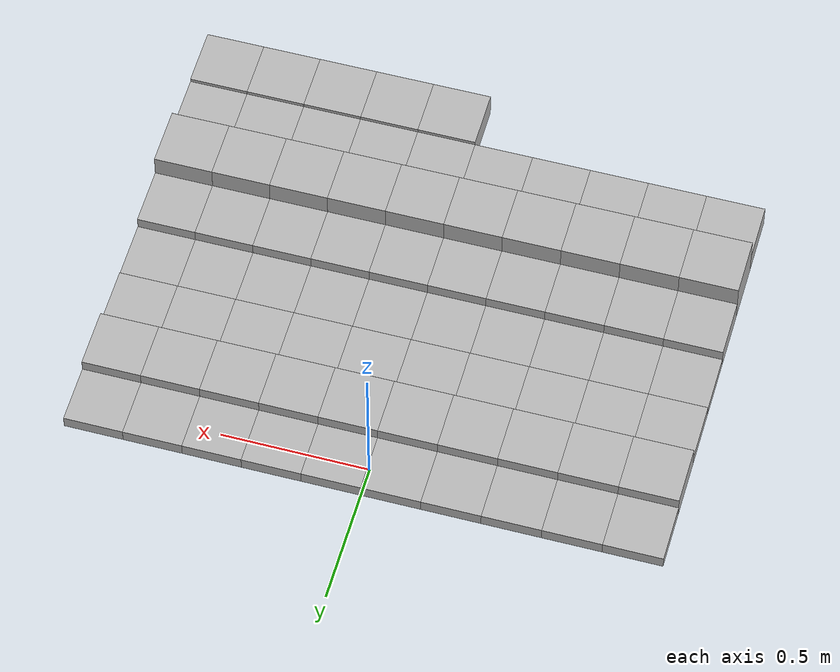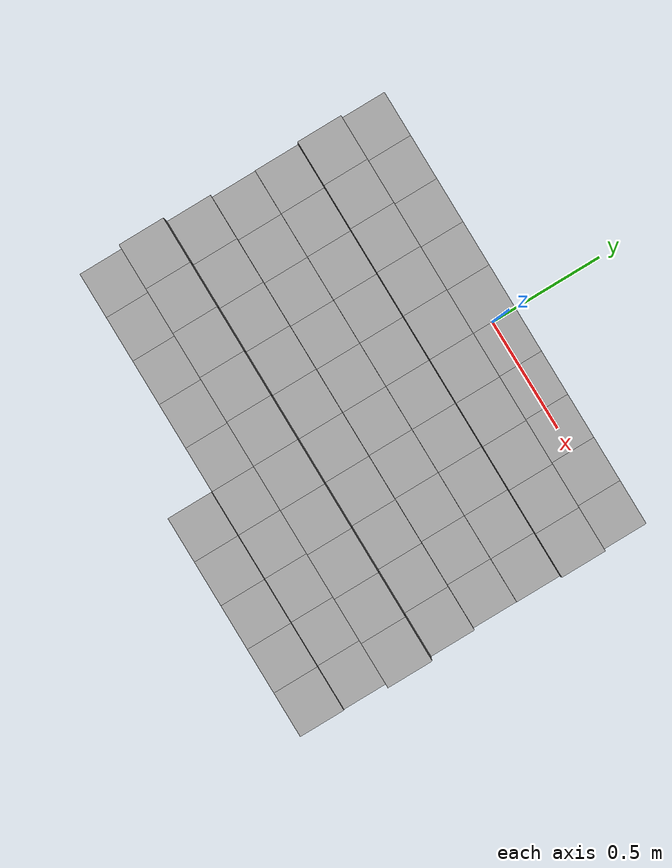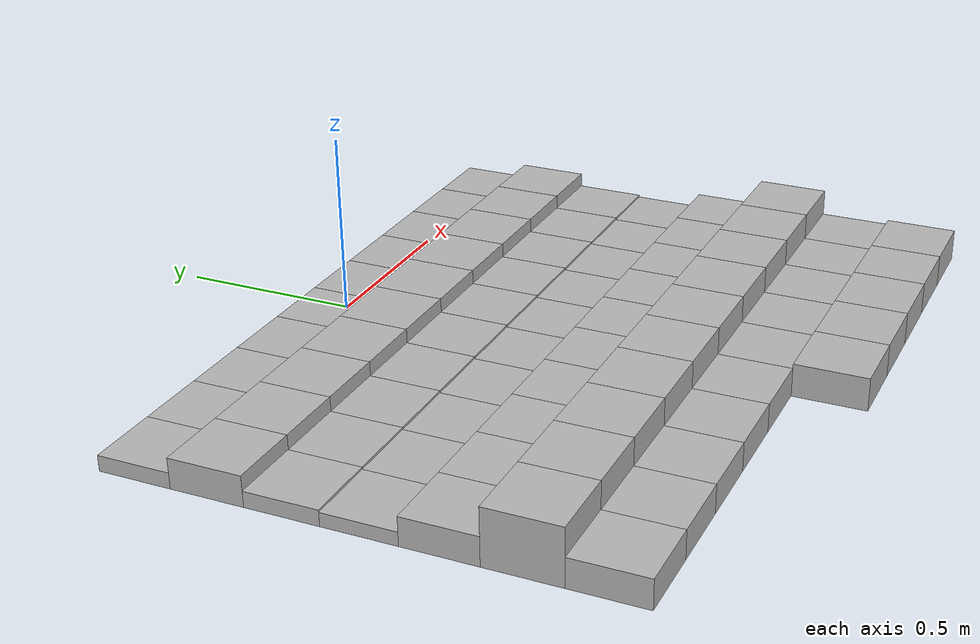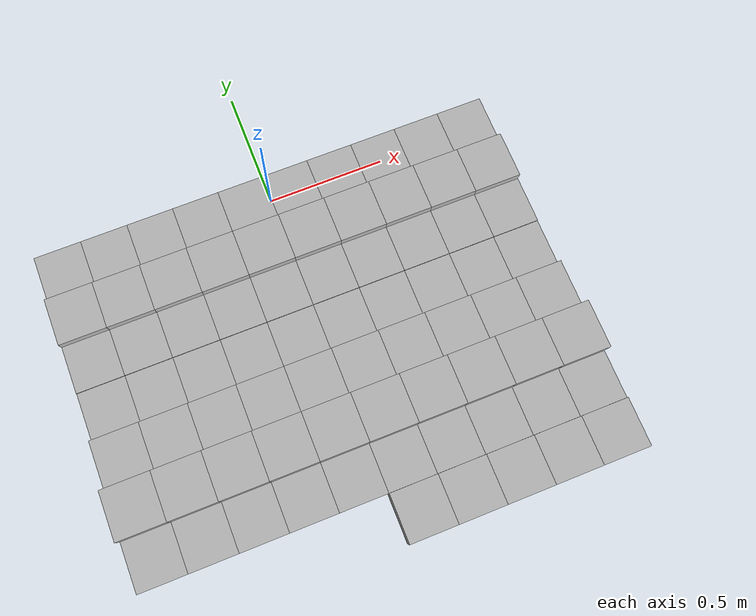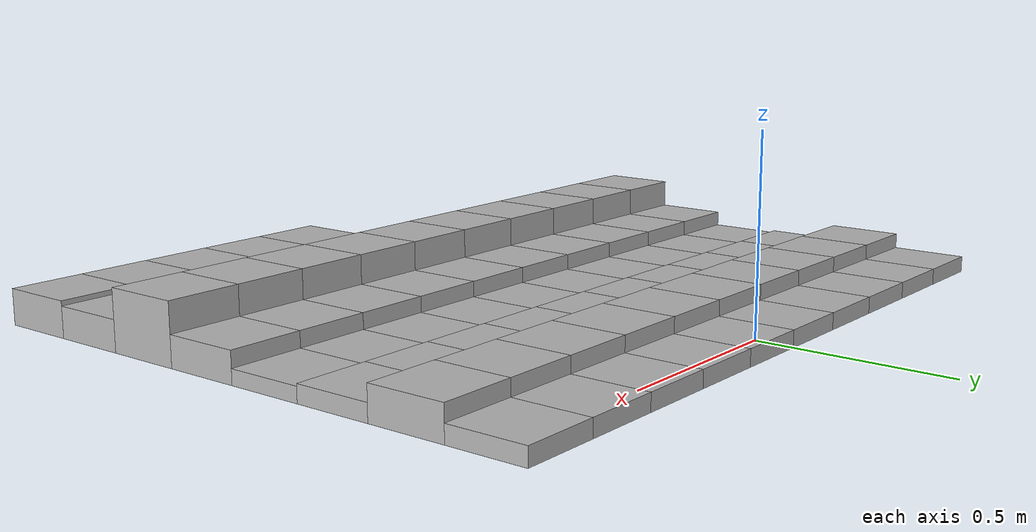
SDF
<sdf version="1.6">
 <model name="Terrain">
  <static>true</static>
  <link name="box_0_0">
   <pose>-0.9 0.0 0.0217370366898 0 0 0</pose>
   <inertial>
    <mass>1.0</mass>
    <inertia><ixx>0.0</ixx><ixy>0.0</ixy><ixz>0.0</ixz><iyy>0.0</iyy><iyz>0.0</iyz><izz>0.0</izz></inertia>
   </inertial>
   <collision name="collision"><geometry><box><size>0.2 0.2 0.0434740733797</size></box></geometry></collision>
   <visual name="visual"><geometry><box><size>0.2 0.2 0.0434740733797</size></box></geometry></visual>
  </link>
  <link name="box_0_1">
   <pose>-0.7 0.0 0.0217370366898 0 0 0</pose>
   <inertial>
    <mass>1.0</mass>
    <inertia><ixx>0.0</ixx><ixy>0.0</ixy><ixz>0.0</ixz><iyy>0.0</iyy><iyz>0.0</iyz><izz>0.0</izz></inertia>
   </inertial>
   <collision name="collision"><geometry><box><size>0.2 0.2 0.0434740733797</size></box></geometry></collision>
   <visual name="visual"><geometry><box><size>0.2 0.2 0.0434740733797</size></box></geometry></visual>
  </link>
  <link name="box_0_2">
   <pose>-0.5 0.0 0.0217370366898 0 0 0</pose>
   <inertial>
    <mass>1.0</mass>
    <inertia><ixx>0.0</ixx><ixy>0.0</ixy><ixz>0.0</ixz><iyy>0.0</iyy><iyz>0.0</iyz><izz>0.0</izz></inertia>
   </inertial>
   <collision name="collision"><geometry><box><size>0.2 0.2 0.0434740733797</size></box></geometry></collision>
   <visual name="visual"><geometry><box><size>0.2 0.2 0.0434740733797</size></box></geometry></visual>
  </link>
  <link name="box_0_3">
   <pose>-0.3 0.0 0.0217370366898 0 0 0</pose>
   <inertial>
    <mass>1.0</mass>
    <inertia><ixx>0.0</ixx><ixy>0.0</ixy><ixz>0.0</ixz><iyy>0.0</iyy><iyz>0.0</iyz><izz>0.0</izz></inertia>
   </inertial>
   <collision name="collision"><geometry><box><size>0.2 0.2 0.0434740733797</size></box></geometry></collision>
   <visual name="visual"><geometry><box><size>0.2 0.2 0.0434740733797</size></box></geometry></visual>
  </link>
  <link name="box_0_4">
   <pose>-0.1 0.0 0.0217370366898 0 0 0</pose>
   <inertial>
    <mass>1.0</mass>
    <inertia><ixx>0.0</ixx><ixy>0.0</ixy><ixz>0.0</ixz><iyy>0.0</iyy><iyz>0.0</iyz><izz>0.0</izz></inertia>
   </inertial>
   <collision name="collision"><geometry><box><size>0.2 0.2 0.0434740733797</size></box></geometry></collision>
   <visual name="visual"><geometry><box><size>0.2 0.2 0.0434740733797</size></box></geometry></visual>
  </link>
  <link name="box_0_5">
   <pose>0.1 0.0 0.0217370366898 0 0 0</pose>
   <inertial>
    <mass>1.0</mass>
    <inertia><ixx>0.0</ixx><ixy>0.0</ixy><ixz>0.0</ixz><iyy>0.0</iyy><iyz>0.0</iyz><izz>0.0</izz></inertia>
   </inertial>
   <collision name="collision"><geometry><box><size>0.2 0.2 0.0434740733797</size></box></geometry></collision>
   <visual name="visual"><geometry><box><size>0.2 0.2 0.0434740733797</size></box></geometry></visual>
  </link>
  <link name="box_0_6">
   <pose>0.3 0.0 0.0217370366898 0 0 0</pose>
   <inertial>
    <mass>1.0</mass>
    <inertia><ixx>0.0</ixx><ixy>0.0</ixy><ixz>0.0</ixz><iyy>0.0</iyy><iyz>0.0</iyz><izz>0.0</izz></inertia>
   </inertial>
   <collision name="collision"><geometry><box><size>0.2 0.2 0.0434740733797</size></box></geometry></collision>
   <visual name="visual"><geometry><box><size>0.2 0.2 0.0434740733797</size></box></geometry></visual>
  </link>
  <link name="box_0_7">
   <pose>0.5 0.0 0.0217370366898 0 0 0</pose>
   <inertial>
    <mass>1.0</mass>
    <inertia><ixx>0.0</ixx><ixy>0.0</ixy><ixz>0.0</ixz><iyy>0.0</iyy><iyz>0.0</iyz><izz>0.0</izz></inertia>
   </inertial>
   <collision name="collision"><geometry><box><size>0.2 0.2 0.0434740733797</size></box></geometry></collision>
   <visual name="visual"><geometry><box><size>0.2 0.2 0.0434740733797</size></box></geometry></visual>
  </link>
  <link name="box_0_8">
   <pose>0.7 0.0 0.0217370366898 0 0 0</pose>
   <inertial>
    <mass>1.0</mass>
    <inertia><ixx>0.0</ixx><ixy>0.0</ixy><ixz>0.0</ixz><iyy>0.0</iyy><iyz>0.0</iyz><izz>0.0</izz></inertia>
   </inertial>
   <collision name="collision"><geometry><box><size>0.2 0.2 0.0434740733797</size></box></geometry></collision>
   <visual name="visual"><geometry><box><size>0.2 0.2 0.0434740733797</size></box></geometry></visual>
  </link>
  <link name="box_0_9">
   <pose>0.9 0.0 0.0217370366898 0 0 0</pose>
   <inertial>
    <mass>1.0</mass>
    <inertia><ixx>0.0</ixx><ixy>0.0</ixy><ixz>0.0</ixz><iyy>0.0</iyy><iyz>0.0</iyz><izz>0.0</izz></inertia>
   </inertial>
   <collision name="collision"><geometry><box><size>0.2 0.2 0.0434740733797</size></box></geometry></collision>
   <visual name="visual"><geometry><box><size>0.2 0.2 0.0434740733797</size></box></geometry></visual>
  </link>
  <link name="box_1_0">
   <pose>-0.9 -0.2 0.0420882695264 0 0 0</pose>
   <inertial>
    <mass>1.0</mass>
    <inertia><ixx>0.0</ixx><ixy>0.0</ixy><ixz>0.0</ixz><iyy>0.0</iyy><iyz>0.0</iyz><izz>0.0</izz></inertia>
   </inertial>
   <collision name="collision"><geometry><box><size>0.2 0.2 0.0841765390528</size></box></geometry></collision>
   <visual name="visual"><geometry><box><size>0.2 0.2 0.0841765390528</size></box></geometry></visual>
  </link>
  <link name="box_1_1">
   <pose>-0.7 -0.2 0.0420882695264 0 0 0</pose>
   <inertial>
    <mass>1.0</mass>
    <inertia><ixx>0.0</ixx><ixy>0.0</ixy><ixz>0.0</ixz><iyy>0.0</iyy><iyz>0.0</iyz><izz>0.0</izz></inertia>
   </inertial>
   <collision name="collision"><geometry><box><size>0.2 0.2 0.0841765390528</size></box></geometry></collision>
   <visual name="visual"><geometry><box><size>0.2 0.2 0.0841765390528</size></box></geometry></visual>
  </link>
  <link name="box_1_2">
   <pose>-0.5 -0.2 0.0420882695264 0 0 0</pose>
   <inertial>
    <mass>1.0</mass>
    <inertia><ixx>0.0</ixx><ixy>0.0</ixy><ixz>0.0</ixz><iyy>0.0</iyy><iyz>0.0</iyz><izz>0.0</izz></inertia>
   </inertial>
   <collision name="collision"><geometry><box><size>0.2 0.2 0.0841765390528</size></box></geometry></collision>
   <visual name="visual"><geometry><box><size>0.2 0.2 0.0841765390528</size></box></geometry></visual>
  </link>
  <link name="box_1_3">
   <pose>-0.3 -0.2 0.0420882695264 0 0 0</pose>
   <inertial>
    <mass>1.0</mass>
    <inertia><ixx>0.0</ixx><ixy>0.0</ixy><ixz>0.0</ixz><iyy>0.0</iyy><iyz>0.0</iyz><izz>0.0</izz></inertia>
   </inertial>
   <collision name="collision"><geometry><box><size>0.2 0.2 0.0841765390528</size></box></geometry></collision>
   <visual name="visual"><geometry><box><size>0.2 0.2 0.0841765390528</size></box></geometry></visual>
  </link>
  <link name="box_1_4">
   <pose>-0.1 -0.2 0.0420882695264 0 0 0</pose>
   <inertial>
    <mass>1.0</mass>
    <inertia><ixx>0.0</ixx><ixy>0.0</ixy><ixz>0.0</ixz><iyy>0.0</iyy><iyz>0.0</iyz><izz>0.0</izz></inertia>
   </inertial>
   <collision name="collision"><geometry><box><size>0.2 0.2 0.0841765390528</size></box></geometry></collision>
   <visual name="visual"><geometry><box><size>0.2 0.2 0.0841765390528</size></box></geometry></visual>
  </link>
  <link name="box_1_5">
   <pose>0.1 -0.2 0.0420882695264 0 0 0</pose>
   <inertial>
    <mass>1.0</mass>
    <inertia><ixx>0.0</ixx><ixy>0.0</ixy><ixz>0.0</ixz><iyy>0.0</iyy><iyz>0.0</iyz><izz>0.0</izz></inertia>
   </inertial>
   <collision name="collision"><geometry><box><size>0.2 0.2 0.0841765390528</size></box></geometry></collision>
   <visual name="visual"><geometry><box><size>0.2 0.2 0.0841765390528</size></box></geometry></visual>
  </link>
  <link name="box_1_6">
   <pose>0.3 -0.2 0.0420882695264 0 0 0</pose>
   <inertial>
    <mass>1.0</mass>
    <inertia><ixx>0.0</ixx><ixy>0.0</ixy><ixz>0.0</ixz><iyy>0.0</iyy><iyz>0.0</iyz><izz>0.0</izz></inertia>
   </inertial>
   <collision name="collision"><geometry><box><size>0.2 0.2 0.0841765390528</size></box></geometry></collision>
   <visual name="visual"><geometry><box><size>0.2 0.2 0.0841765390528</size></box></geometry></visual>
  </link>
  <link name="box_1_7">
   <pose>0.5 -0.2 0.0420882695264 0 0 0</pose>
   <inertial>
    <mass>1.0</mass>
    <inertia><ixx>0.0</ixx><ixy>0.0</ixy><ixz>0.0</ixz><iyy>0.0</iyy><iyz>0.0</iyz><izz>0.0</izz></inertia>
   </inertial>
   <collision name="collision"><geometry><box><size>0.2 0.2 0.0841765390528</size></box></geometry></collision>
   <visual name="visual"><geometry><box><size>0.2 0.2 0.0841765390528</size></box></geometry></visual>
  </link>
  <link name="box_1_8">
   <pose>0.7 -0.2 0.0420882695264 0 0 0</pose>
   <inertial>
    <mass>1.0</mass>
    <inertia><ixx>0.0</ixx><ixy>0.0</ixy><ixz>0.0</ixz><iyy>0.0</iyy><iyz>0.0</iyz><izz>0.0</izz></inertia>
   </inertial>
   <collision name="collision"><geometry><box><size>0.2 0.2 0.0841765390528</size></box></geometry></collision>
   <visual name="visual"><geometry><box><size>0.2 0.2 0.0841765390528</size></box></geometry></visual>
  </link>
  <link name="box_1_9">
   <pose>0.9 -0.2 0.0420882695264 0 0 0</pose>
   <inertial>
    <mass>1.0</mass>
    <inertia><ixx>0.0</ixx><ixy>0.0</ixy><ixz>0.0</ixz><iyy>0.0</iyy><iyz>0.0</iyz><izz>0.0</izz></inertia>
   </inertial>
   <collision name="collision"><geometry><box><size>0.2 0.2 0.0841765390528</size></box></geometry></collision>
   <visual name="visual"><geometry><box><size>0.2 0.2 0.0841765390528</size></box></geometry></visual>
  </link>
  <link name="box_2_0">
   <pose>-0.9 -0.4 0.0218855744649 0 0 0</pose>
   <inertial>
    <mass>1.0</mass>
    <inertia><ixx>0.0</ixx><ixy>0.0</ixy><ixz>0.0</ixz><iyy>0.0</iyy><iyz>0.0</iyz><izz>0.0</izz></inertia>
   </inertial>
   <collision name="collision"><geometry><box><size>0.2 0.2 0.0437711489298</size></box></geometry></collision>
   <visual name="visual"><geometry><box><size>0.2 0.2 0.0437711489298</size></box></geometry></visual>
  </link>
  <link name="box_2_1">
   <pose>-0.7 -0.4 0.0218855744649 0 0 0</pose>
   <inertial>
    <mass>1.0</mass>
    <inertia><ixx>0.0</ixx><ixy>0.0</ixy><ixz>0.0</ixz><iyy>0.0</iyy><iyz>0.0</iyz><izz>0.0</izz></inertia>
   </inertial>
   <collision name="collision"><geometry><box><size>0.2 0.2 0.0437711489298</size></box></geometry></collision>
   <visual name="visual"><geometry><box><size>0.2 0.2 0.0437711489298</size></box></geometry></visual>
  </link>
  <link name="box_2_2">
   <pose>-0.5 -0.4 0.0218855744649 0 0 0</pose>
   <inertial>
    <mass>1.0</mass>
    <inertia><ixx>0.0</ixx><ixy>0.0</ixy><ixz>0.0</ixz><iyy>0.0</iyy><iyz>0.0</iyz><izz>0.0</izz></inertia>
   </inertial>
   <collision name="collision"><geometry><box><size>0.2 0.2 0.0437711489298</size></box></geometry></collision>
   <visual name="visual"><geometry><box><size>0.2 0.2 0.0437711489298</size></box></geometry></visual>
  </link>
  <link name="box_2_3">
   <pose>-0.3 -0.4 0.0218855744649 0 0 0</pose>
   <inertial>
    <mass>1.0</mass>
    <inertia><ixx>0.0</ixx><ixy>0.0</ixy><ixz>0.0</ixz><iyy>0.0</iyy><iyz>0.0</iyz><izz>0.0</izz></inertia>
   </inertial>
   <collision name="collision"><geometry><box><size>0.2 0.2 0.0437711489298</size></box></geometry></collision>
   <visual name="visual"><geometry><box><size>0.2 0.2 0.0437711489298</size></box></geometry></visual>
  </link>
  <link name="box_2_4">
   <pose>-0.1 -0.4 0.0218855744649 0 0 0</pose>
   <inertial>
    <mass>1.0</mass>
    <inertia><ixx>0.0</ixx><ixy>0.0</ixy><ixz>0.0</ixz><iyy>0.0</iyy><iyz>0.0</iyz><izz>0.0</izz></inertia>
   </inertial>
   <collision name="collision"><geometry><box><size>0.2 0.2 0.0437711489298</size></box></geometry></collision>
   <visual name="visual"><geometry><box><size>0.2 0.2 0.0437711489298</size></box></geometry></visual>
  </link>
  <link name="box_2_5">
   <pose>0.1 -0.4 0.0218855744649 0 0 0</pose>
   <inertial>
    <mass>1.0</mass>
    <inertia><ixx>0.0</ixx><ixy>0.0</ixy><ixz>0.0</ixz><iyy>0.0</iyy><iyz>0.0</iyz><izz>0.0</izz></inertia>
   </inertial>
   <collision name="collision"><geometry><box><size>0.2 0.2 0.0437711489298</size></box></geometry></collision>
   <visual name="visual"><geometry><box><size>0.2 0.2 0.0437711489298</size></box></geometry></visual>
  </link>
  <link name="box_2_6">
   <pose>0.3 -0.4 0.0218855744649 0 0 0</pose>
   <inertial>
    <mass>1.0</mass>
    <inertia><ixx>0.0</ixx><ixy>0.0</ixy><ixz>0.0</ixz><iyy>0.0</iyy><iyz>0.0</iyz><izz>0.0</izz></inertia>
   </inertial>
   <collision name="collision"><geometry><box><size>0.2 0.2 0.0437711489298</size></box></geometry></collision>
   <visual name="visual"><geometry><box><size>0.2 0.2 0.0437711489298</size></box></geometry></visual>
  </link>
  <link name="box_2_7">
   <pose>0.5 -0.4 0.0218855744649 0 0 0</pose>
   <inertial>
    <mass>1.0</mass>
    <inertia><ixx>0.0</ixx><ixy>0.0</ixy><ixz>0.0</ixz><iyy>0.0</iyy><iyz>0.0</iyz><izz>0.0</izz></inertia>
   </inertial>
   <collision name="collision"><geometry><box><size>0.2 0.2 0.0437711489298</size></box></geometry></collision>
   <visual name="visual"><geometry><box><size>0.2 0.2 0.0437711489298</size></box></geometry></visual>
  </link>
  <link name="box_2_8">
   <pose>0.7 -0.4 0.0218855744649 0 0 0</pose>
   <inertial>
    <mass>1.0</mass>
    <inertia><ixx>0.0</ixx><ixy>0.0</ixy><ixz>0.0</ixz><iyy>0.0</iyy><iyz>0.0</iyz><izz>0.0</izz></inertia>
   </inertial>
   <collision name="collision"><geometry><box><size>0.2 0.2 0.0437711489298</size></box></geometry></collision>
   <visual name="visual"><geometry><box><size>0.2 0.2 0.0437711489298</size></box></geometry></visual>
  </link>
  <link name="box_2_9">
   <pose>0.9 -0.4 0.0218855744649 0 0 0</pose>
   <inertial>
    <mass>1.0</mass>
    <inertia><ixx>0.0</ixx><ixy>0.0</ixy><ixz>0.0</ixz><iyy>0.0</iyy><iyz>0.0</iyz><izz>0.0</izz></inertia>
   </inertial>
   <collision name="collision"><geometry><box><size>0.2 0.2 0.0437711489298</size></box></geometry></collision>
   <visual name="visual"><geometry><box><size>0.2 0.2 0.0437711489298</size></box></geometry></visual>
  </link>
  <link name="box_3_0">
   <pose>-0.9 -0.6 0.0189409677054 0 0 0</pose>
   <inertial>
    <mass>1.0</mass>
    <inertia><ixx>0.0</ixx><ixy>0.0</ixy><ixz>0.0</ixz><iyy>0.0</iyy><iyz>0.0</iyz><izz>0.0</izz></inertia>
   </inertial>
   <collision name="collision"><geometry><box><size>0.2 0.2 0.0378819354108</size></box></geometry></collision>
   <visual name="visual"><geometry><box><size>0.2 0.2 0.0378819354108</size></box></geometry></visual>
  </link>
  <link name="box_3_1">
   <pose>-0.7 -0.6 0.0189409677054 0 0 0</pose>
   <inertial>
    <mass>1.0</mass>
    <inertia><ixx>0.0</ixx><ixy>0.0</ixy><ixz>0.0</ixz><iyy>0.0</iyy><iyz>0.0</iyz><izz>0.0</izz></inertia>
   </inertial>
   <collision name="collision"><geometry><box><size>0.2 0.2 0.0378819354108</size></box></geometry></collision>
   <visual name="visual"><geometry><box><size>0.2 0.2 0.0378819354108</size></box></geometry></visual>
  </link>
  <link name="box_3_2">
   <pose>-0.5 -0.6 0.0189409677054 0 0 0</pose>
   <inertial>
    <mass>1.0</mass>
    <inertia><ixx>0.0</ixx><ixy>0.0</ixy><ixz>0.0</ixz><iyy>0.0</iyy><iyz>0.0</iyz><izz>0.0</izz></inertia>
   </inertial>
   <collision name="collision"><geometry><box><size>0.2 0.2 0.0378819354108</size></box></geometry></collision>
   <visual name="visual"><geometry><box><size>0.2 0.2 0.0378819354108</size></box></geometry></visual>
  </link>
  <link name="box_3_3">
   <pose>-0.3 -0.6 0.0189409677054 0 0 0</pose>
   <inertial>
    <mass>1.0</mass>
    <inertia><ixx>0.0</ixx><ixy>0.0</ixy><ixz>0.0</ixz><iyy>0.0</iyy><iyz>0.0</iyz><izz>0.0</izz></inertia>
   </inertial>
   <collision name="collision"><geometry><box><size>0.2 0.2 0.0378819354108</size></box></geometry></collision>
   <visual name="visual"><geometry><box><size>0.2 0.2 0.0378819354108</size></box></geometry></visual>
  </link>
  <link name="box_3_4">
   <pose>-0.1 -0.6 0.0189409677054 0 0 0</pose>
   <inertial>
    <mass>1.0</mass>
    <inertia><ixx>0.0</ixx><ixy>0.0</ixy><ixz>0.0</ixz><iyy>0.0</iyy><iyz>0.0</iyz><izz>0.0</izz></inertia>
   </inertial>
   <collision name="collision"><geometry><box><size>0.2 0.2 0.0378819354108</size></box></geometry></collision>
   <visual name="visual"><geometry><box><size>0.2 0.2 0.0378819354108</size></box></geometry></visual>
  </link>
  <link name="box_3_5">
   <pose>0.1 -0.6 0.0189409677054 0 0 0</pose>
   <inertial>
    <mass>1.0</mass>
    <inertia><ixx>0.0</ixx><ixy>0.0</ixy><ixz>0.0</ixz><iyy>0.0</iyy><iyz>0.0</iyz><izz>0.0</izz></inertia>
   </inertial>
   <collision name="collision"><geometry><box><size>0.2 0.2 0.0378819354108</size></box></geometry></collision>
   <visual name="visual"><geometry><box><size>0.2 0.2 0.0378819354108</size></box></geometry></visual>
  </link>
  <link name="box_3_6">
   <pose>0.3 -0.6 0.0189409677054 0 0 0</pose>
   <inertial>
    <mass>1.0</mass>
    <inertia><ixx>0.0</ixx><ixy>0.0</ixy><ixz>0.0</ixz><iyy>0.0</iyy><iyz>0.0</iyz><izz>0.0</izz></inertia>
   </inertial>
   <collision name="collision"><geometry><box><size>0.2 0.2 0.0378819354108</size></box></geometry></collision>
   <visual name="visual"><geometry><box><size>0.2 0.2 0.0378819354108</size></box></geometry></visual>
  </link>
  <link name="box_3_7">
   <pose>0.5 -0.6 0.0189409677054 0 0 0</pose>
   <inertial>
    <mass>1.0</mass>
    <inertia><ixx>0.0</ixx><ixy>0.0</ixy><ixz>0.0</ixz><iyy>0.0</iyy><iyz>0.0</iyz><izz>0.0</izz></inertia>
   </inertial>
   <collision name="collision"><geometry><box><size>0.2 0.2 0.0378819354108</size></box></geometry></collision>
   <visual name="visual"><geometry><box><size>0.2 0.2 0.0378819354108</size></box></geometry></visual>
  </link>
  <link name="box_3_8">
   <pose>0.7 -0.6 0.0189409677054 0 0 0</pose>
   <inertial>
    <mass>1.0</mass>
    <inertia><ixx>0.0</ixx><ixy>0.0</ixy><ixz>0.0</ixz><iyy>0.0</iyy><iyz>0.0</iyz><izz>0.0</izz></inertia>
   </inertial>
   <collision name="collision"><geometry><box><size>0.2 0.2 0.0378819354108</size></box></geometry></collision>
   <visual name="visual"><geometry><box><size>0.2 0.2 0.0378819354108</size></box></geometry></visual>
  </link>
  <link name="box_3_9">
   <pose>0.9 -0.6 0.0189409677054 0 0 0</pose>
   <inertial>
    <mass>1.0</mass>
    <inertia><ixx>0.0</ixx><ixy>0.0</ixy><ixz>0.0</ixz><iyy>0.0</iyy><iyz>0.0</iyz><izz>0.0</izz></inertia>
   </inertial>
   <collision name="collision"><geometry><box><size>0.2 0.2 0.0378819354108</size></box></geometry></collision>
   <visual name="visual"><geometry><box><size>0.2 0.2 0.0378819354108</size></box></geometry></visual>
  </link>
  <link name="box_4_0">
   <pose>-0.9 -0.8 0.0393046862697 0 0 0</pose>
   <inertial>
    <mass>1.0</mass>
    <inertia><ixx>0.0</ixx><ixy>0.0</ixy><ixz>0.0</ixz><iyy>0.0</iyy><iyz>0.0</iyz><izz>0.0</izz></inertia>
   </inertial>
   <collision name="collision"><geometry><box><size>0.2 0.2 0.0786093725395</size></box></geometry></collision>
   <visual name="visual"><geometry><box><size>0.2 0.2 0.0786093725395</size></box></geometry></visual>
  </link>
  <link name="box_4_1">
   <pose>-0.7 -0.8 0.0393046862697 0 0 0</pose>
   <inertial>
    <mass>1.0</mass>
    <inertia><ixx>0.0</ixx><ixy>0.0</ixy><ixz>0.0</ixz><iyy>0.0</iyy><iyz>0.0</iyz><izz>0.0</izz></inertia>
   </inertial>
   <collision name="collision"><geometry><box><size>0.2 0.2 0.0786093725395</size></box></geometry></collision>
   <visual name="visual"><geometry><box><size>0.2 0.2 0.0786093725395</size></box></geometry></visual>
  </link>
  <link name="box_4_2">
   <pose>-0.5 -0.8 0.0393046862697 0 0 0</pose>
   <inertial>
    <mass>1.0</mass>
    <inertia><ixx>0.0</ixx><ixy>0.0</ixy><ixz>0.0</ixz><iyy>0.0</iyy><iyz>0.0</iyz><izz>0.0</izz></inertia>
   </inertial>
   <collision name="collision"><geometry><box><size>0.2 0.2 0.0786093725395</size></box></geometry></collision>
   <visual name="visual"><geometry><box><size>0.2 0.2 0.0786093725395</size></box></geometry></visual>
  </link>
  <link name="box_4_3">
   <pose>-0.3 -0.8 0.0393046862697 0 0 0</pose>
   <inertial>
    <mass>1.0</mass>
    <inertia><ixx>0.0</ixx><ixy>0.0</ixy><ixz>0.0</ixz><iyy>0.0</iyy><iyz>0.0</iyz><izz>0.0</izz></inertia>
   </inertial>
   <collision name="collision"><geometry><box><size>0.2 0.2 0.0786093725395</size></box></geometry></collision>
   <visual name="visual"><geometry><box><size>0.2 0.2 0.0786093725395</size></box></geometry></visual>
  </link>
  <link name="box_4_4">
   <pose>-0.1 -0.8 0.0393046862697 0 0 0</pose>
   <inertial>
    <mass>1.0</mass>
    <inertia><ixx>0.0</ixx><ixy>0.0</ixy><ixz>0.0</ixz><iyy>0.0</iyy><iyz>0.0</iyz><izz>0.0</izz></inertia>
   </inertial>
   <collision name="collision"><geometry><box><size>0.2 0.2 0.0786093725395</size></box></geometry></collision>
   <visual name="visual"><geometry><box><size>0.2 0.2 0.0786093725395</size></box></geometry></visual>
  </link>
  <link name="box_4_5">
   <pose>0.1 -0.8 0.0393046862697 0 0 0</pose>
   <inertial>
    <mass>1.0</mass>
    <inertia><ixx>0.0</ixx><ixy>0.0</ixy><ixz>0.0</ixz><iyy>0.0</iyy><iyz>0.0</iyz><izz>0.0</izz></inertia>
   </inertial>
   <collision name="collision"><geometry><box><size>0.2 0.2 0.0786093725395</size></box></geometry></collision>
   <visual name="visual"><geometry><box><size>0.2 0.2 0.0786093725395</size></box></geometry></visual>
  </link>
  <link name="box_4_6">
   <pose>0.3 -0.8 0.0393046862697 0 0 0</pose>
   <inertial>
    <mass>1.0</mass>
    <inertia><ixx>0.0</ixx><ixy>0.0</ixy><ixz>0.0</ixz><iyy>0.0</iyy><iyz>0.0</iyz><izz>0.0</izz></inertia>
   </inertial>
   <collision name="collision"><geometry><box><size>0.2 0.2 0.0786093725395</size></box></geometry></collision>
   <visual name="visual"><geometry><box><size>0.2 0.2 0.0786093725395</size></box></geometry></visual>
  </link>
  <link name="box_4_7">
   <pose>0.5 -0.8 0.0393046862697 0 0 0</pose>
   <inertial>
    <mass>1.0</mass>
    <inertia><ixx>0.0</ixx><ixy>0.0</ixy><ixz>0.0</ixz><iyy>0.0</iyy><iyz>0.0</iyz><izz>0.0</izz></inertia>
   </inertial>
   <collision name="collision"><geometry><box><size>0.2 0.2 0.0786093725395</size></box></geometry></collision>
   <visual name="visual"><geometry><box><size>0.2 0.2 0.0786093725395</size></box></geometry></visual>
  </link>
  <link name="box_4_8">
   <pose>0.7 -0.8 0.0393046862697 0 0 0</pose>
   <inertial>
    <mass>1.0</mass>
    <inertia><ixx>0.0</ixx><ixy>0.0</ixy><ixz>0.0</ixz><iyy>0.0</iyy><iyz>0.0</iyz><izz>0.0</izz></inertia>
   </inertial>
   <collision name="collision"><geometry><box><size>0.2 0.2 0.0786093725395</size></box></geometry></collision>
   <visual name="visual"><geometry><box><size>0.2 0.2 0.0786093725395</size></box></geometry></visual>
  </link>
  <link name="box_4_9">
   <pose>0.9 -0.8 0.0393046862697 0 0 0</pose>
   <inertial>
    <mass>1.0</mass>
    <inertia><ixx>0.0</ixx><ixy>0.0</ixy><ixz>0.0</ixz><iyy>0.0</iyy><iyz>0.0</iyz><izz>0.0</izz></inertia>
   </inertial>
   <collision name="collision"><geometry><box><size>0.2 0.2 0.0786093725395</size></box></geometry></collision>
   <visual name="visual"><geometry><box><size>0.2 0.2 0.0786093725395</size></box></geometry></visual>
  </link>
  <link name="box_5_0">
   <pose>-0.9 -1.0 0.0774959682447 0 0 0</pose>
   <inertial>
    <mass>1.0</mass>
    <inertia><ixx>0.0</ixx><ixy>0.0</ixy><ixz>0.0</ixz><iyy>0.0</iyy><iyz>0.0</iyz><izz>0.0</izz></inertia>
   </inertial>
   <collision name="collision"><geometry><box><size>0.2 0.2 0.154991936489</size></box></geometry></collision>
   <visual name="visual"><geometry><box><size>0.2 0.2 0.154991936489</size></box></geometry></visual>
  </link>
  <link name="box_5_1">
   <pose>-0.7 -1.0 0.0774959682447 0 0 0</pose>
   <inertial>
    <mass>1.0</mass>
    <inertia><ixx>0.0</ixx><ixy>0.0</ixy><ixz>0.0</ixz><iyy>0.0</iyy><iyz>0.0</iyz><izz>0.0</izz></inertia>
   </inertial>
   <collision name="collision"><geometry><box><size>0.2 0.2 0.154991936489</size></box></geometry></collision>
   <visual name="visual"><geometry><box><size>0.2 0.2 0.154991936489</size></box></geometry></visual>
  </link>
  <link name="box_5_2">
   <pose>-0.5 -1.0 0.0774959682447 0 0 0</pose>
   <inertial>
    <mass>1.0</mass>
    <inertia><ixx>0.0</ixx><ixy>0.0</ixy><ixz>0.0</ixz><iyy>0.0</iyy><iyz>0.0</iyz><izz>0.0</izz></inertia>
   </inertial>
   <collision name="collision"><geometry><box><size>0.2 0.2 0.154991936489</size></box></geometry></collision>
   <visual name="visual"><geometry><box><size>0.2 0.2 0.154991936489</size></box></geometry></visual>
  </link>
  <link name="box_5_3">
   <pose>-0.3 -1.0 0.0774959682447 0 0 0</pose>
   <inertial>
    <mass>1.0</mass>
    <inertia><ixx>0.0</ixx><ixy>0.0</ixy><ixz>0.0</ixz><iyy>0.0</iyy><iyz>0.0</iyz><izz>0.0</izz></inertia>
   </inertial>
   <collision name="collision"><geometry><box><size>0.2 0.2 0.154991936489</size></box></geometry></collision>
   <visual name="visual"><geometry><box><size>0.2 0.2 0.154991936489</size></box></geometry></visual>
  </link>
  <link name="box_5_4">
   <pose>-0.1 -1.0 0.0774959682447 0 0 0</pose>
   <inertial>
    <mass>1.0</mass>
    <inertia><ixx>0.0</ixx><ixy>0.0</ixy><ixz>0.0</ixz><iyy>0.0</iyy><iyz>0.0</iyz><izz>0.0</izz></inertia>
   </inertial>
   <collision name="collision"><geometry><box><size>0.2 0.2 0.154991936489</size></box></geometry></collision>
   <visual name="visual"><geometry><box><size>0.2 0.2 0.154991936489</size></box></geometry></visual>
  </link>
  <link name="box_5_5">
   <pose>0.1 -1.0 0.0774959682447 0 0 0</pose>
   <inertial>
    <mass>1.0</mass>
    <inertia><ixx>0.0</ixx><ixy>0.0</ixy><ixz>0.0</ixz><iyy>0.0</iyy><iyz>0.0</iyz><izz>0.0</izz></inertia>
   </inertial>
   <collision name="collision"><geometry><box><size>0.2 0.2 0.154991936489</size></box></geometry></collision>
   <visual name="visual"><geometry><box><size>0.2 0.2 0.154991936489</size></box></geometry></visual>
  </link>
  <link name="box_5_6">
   <pose>0.3 -1.0 0.0774959682447 0 0 0</pose>
   <inertial>
    <mass>1.0</mass>
    <inertia><ixx>0.0</ixx><ixy>0.0</ixy><ixz>0.0</ixz><iyy>0.0</iyy><iyz>0.0</iyz><izz>0.0</izz></inertia>
   </inertial>
   <collision name="collision"><geometry><box><size>0.2 0.2 0.154991936489</size></box></geometry></collision>
   <visual name="visual"><geometry><box><size>0.2 0.2 0.154991936489</size></box></geometry></visual>
  </link>
  <link name="box_5_7">
   <pose>0.5 -1.0 0.0774959682447 0 0 0</pose>
   <inertial>
    <mass>1.0</mass>
    <inertia><ixx>0.0</ixx><ixy>0.0</ixy><ixz>0.0</ixz><iyy>0.0</iyy><iyz>0.0</iyz><izz>0.0</izz></inertia>
   </inertial>
   <collision name="collision"><geometry><box><size>0.2 0.2 0.154991936489</size></box></geometry></collision>
   <visual name="visual"><geometry><box><size>0.2 0.2 0.154991936489</size></box></geometry></visual>
  </link>
  <link name="box_5_8">
   <pose>0.7 -1.0 0.0774959682447 0 0 0</pose>
   <inertial>
    <mass>1.0</mass>
    <inertia><ixx>0.0</ixx><ixy>0.0</ixy><ixz>0.0</ixz><iyy>0.0</iyy><iyz>0.0</iyz><izz>0.0</izz></inertia>
   </inertial>
   <collision name="collision"><geometry><box><size>0.2 0.2 0.154991936489</size></box></geometry></collision>
   <visual name="visual"><geometry><box><size>0.2 0.2 0.154991936489</size></box></geometry></visual>
  </link>
  <link name="box_5_9">
   <pose>0.9 -1.0 0.0774959682447 0 0 0</pose>
   <inertial>
    <mass>1.0</mass>
    <inertia><ixx>0.0</ixx><ixy>0.0</ixy><ixz>0.0</ixz><iyy>0.0</iyy><iyz>0.0</iyz><izz>0.0</izz></inertia>
   </inertial>
   <collision name="collision"><geometry><box><size>0.2 0.2 0.154991936489</size></box></geometry></collision>
   <visual name="visual"><geometry><box><size>0.2 0.2 0.154991936489</size></box></geometry></visual>
  </link>
  <link name="box_6_0">
   <pose>-0.9 -1.2 0.0398561098975 0 0 0</pose>
   <inertial>
    <mass>1.0</mass>
    <inertia><ixx>0.0</ixx><ixy>0.0</ixy><ixz>0.0</ixz><iyy>0.0</iyy><iyz>0.0</iyz><izz>0.0</izz></inertia>
   </inertial>
   <collision name="collision"><geometry><box><size>0.2 0.2 0.0797122197951</size></box></geometry></collision>
   <visual name="visual"><geometry><box><size>0.2 0.2 0.0797122197951</size></box></geometry></visual>
  </link>
  <link name="box_6_1">
   <pose>-0.7 -1.2 0.0398561098975 0 0 0</pose>
   <inertial>
    <mass>1.0</mass>
    <inertia><ixx>0.0</ixx><ixy>0.0</ixy><ixz>0.0</ixz><iyy>0.0</iyy><iyz>0.0</iyz><izz>0.0</izz></inertia>
   </inertial>
   <collision name="collision"><geometry><box><size>0.2 0.2 0.0797122197951</size></box></geometry></collision>
   <visual name="visual"><geometry><box><size>0.2 0.2 0.0797122197951</size></box></geometry></visual>
  </link>
  <link name="box_6_2">
   <pose>-0.5 -1.2 0.0398561098975 0 0 0</pose>
   <inertial>
    <mass>1.0</mass>
    <inertia><ixx>0.0</ixx><ixy>0.0</ixy><ixz>0.0</ixz><iyy>0.0</iyy><iyz>0.0</iyz><izz>0.0</izz></inertia>
   </inertial>
   <collision name="collision"><geometry><box><size>0.2 0.2 0.0797122197951</size></box></geometry></collision>
   <visual name="visual"><geometry><box><size>0.2 0.2 0.0797122197951</size></box></geometry></visual>
  </link>
  <link name="box_6_3">
   <pose>-0.3 -1.2 0.0398561098975 0 0 0</pose>
   <inertial>
    <mass>1.0</mass>
    <inertia><ixx>0.0</ixx><ixy>0.0</ixy><ixz>0.0</ixz><iyy>0.0</iyy><iyz>0.0</iyz><izz>0.0</izz></inertia>
   </inertial>
   <collision name="collision"><geometry><box><size>0.2 0.2 0.0797122197951</size></box></geometry></collision>
   <visual name="visual"><geometry><box><size>0.2 0.2 0.0797122197951</size></box></geometry></visual>
  </link>
  <link name="box_6_4">
   <pose>-0.1 -1.2 0.0398561098975 0 0 0</pose>
   <inertial>
    <mass>1.0</mass>
    <inertia><ixx>0.0</ixx><ixy>0.0</ixy><ixz>0.0</ixz><iyy>0.0</iyy><iyz>0.0</iyz><izz>0.0</izz></inertia>
   </inertial>
   <collision name="collision"><geometry><box><size>0.2 0.2 0.0797122197951</size></box></geometry></collision>
   <visual name="visual"><geometry><box><size>0.2 0.2 0.0797122197951</size></box></geometry></visual>
  </link>
  <link name="box_6_5">
   <pose>0.1 -1.2 0.0398561098975 0 0 0</pose>
   <inertial>
    <mass>1.0</mass>
    <inertia><ixx>0.0</ixx><ixy>0.0</ixy><ixz>0.0</ixz><iyy>0.0</iyy><iyz>0.0</iyz><izz>0.0</izz></inertia>
   </inertial>
   <collision name="collision"><geometry><box><size>0.2 0.2 0.0797122197951</size></box></geometry></collision>
   <visual name="visual"><geometry><box><size>0.2 0.2 0.0797122197951</size></box></geometry></visual>
  </link>
  <link name="box_6_6">
   <pose>0.3 -1.2 0.0398561098975 0 0 0</pose>
   <inertial>
    <mass>1.0</mass>
    <inertia><ixx>0.0</ixx><ixy>0.0</ixy><ixz>0.0</ixz><iyy>0.0</iyy><iyz>0.0</iyz><izz>0.0</izz></inertia>
   </inertial>
   <collision name="collision"><geometry><box><size>0.2 0.2 0.0797122197951</size></box></geometry></collision>
   <visual name="visual"><geometry><box><size>0.2 0.2 0.0797122197951</size></box></geometry></visual>
  </link>
  <link name="box_6_7">
   <pose>0.5 -1.2 0.0398561098975 0 0 0</pose>
   <inertial>
    <mass>1.0</mass>
    <inertia><ixx>0.0</ixx><ixy>0.0</ixy><ixz>0.0</ixz><iyy>0.0</iyy><iyz>0.0</iyz><izz>0.0</izz></inertia>
   </inertial>
   <collision name="collision"><geometry><box><size>0.2 0.2 0.0797122197951</size></box></geometry></collision>
   <visual name="visual"><geometry><box><size>0.2 0.2 0.0797122197951</size></box></geometry></visual>
  </link>
  <link name="box_6_8">
   <pose>0.7 -1.2 0.0398561098975 0 0 0</pose>
   <inertial>
    <mass>1.0</mass>
    <inertia><ixx>0.0</ixx><ixy>0.0</ixy><ixz>0.0</ixz><iyy>0.0</iyy><iyz>0.0</iyz><izz>0.0</izz></inertia>
   </inertial>
   <collision name="collision"><geometry><box><size>0.2 0.2 0.0797122197951</size></box></geometry></collision>
   <visual name="visual"><geometry><box><size>0.2 0.2 0.0797122197951</size></box></geometry></visual>
  </link>
  <link name="box_6_9">
   <pose>0.9 -1.2 0.0398561098975 0 0 0</pose>
   <inertial>
    <mass>1.0</mass>
    <inertia><ixx>0.0</ixx><ixy>0.0</ixy><ixz>0.0</ixz><iyy>0.0</iyy><iyz>0.0</iyz><izz>0.0</izz></inertia>
   </inertial>
   <collision name="collision"><geometry><box><size>0.2 0.2 0.0797122197951</size></box></geometry></collision>
   <visual name="visual"><geometry><box><size>0.2 0.2 0.0797122197951</size></box></geometry></visual>
  </link>
  <link name="box_7_5">
   <pose>0.1 -1.4 0.0462164252197 0 0 0</pose>
   <inertial>
    <mass>1.0</mass>
    <inertia><ixx>0.0</ixx><ixy>0.0</ixy><ixz>0.0</ixz><iyy>0.0</iyy><iyz>0.0</iyz><izz>0.0</izz></inertia>
   </inertial>
   <collision name="collision"><geometry><box><size>0.2 0.2 0.0924328504394</size></box></geometry></collision>
   <visual name="visual"><geometry><box><size>0.2 0.2 0.0924328504394</size></box></geometry></visual>
  </link>
  <link name="box_7_6">
   <pose>0.3 -1.4 0.0462164252197 0 0 0</pose>
   <inertial>
    <mass>1.0</mass>
    <inertia><ixx>0.0</ixx><ixy>0.0</ixy><ixz>0.0</ixz><iyy>0.0</iyy><iyz>0.0</iyz><izz>0.0</izz></inertia>
   </inertial>
   <collision name="collision"><geometry><box><size>0.2 0.2 0.0924328504394</size></box></geometry></collision>
   <visual name="visual"><geometry><box><size>0.2 0.2 0.0924328504394</size></box></geometry></visual>
  </link>
  <link name="box_7_7">
   <pose>0.5 -1.4 0.0462164252197 0 0 0</pose>
   <inertial>
    <mass>1.0</mass>
    <inertia><ixx>0.0</ixx><ixy>0.0</ixy><ixz>0.0</ixz><iyy>0.0</iyy><iyz>0.0</iyz><izz>0.0</izz></inertia>
   </inertial>
   <collision name="collision"><geometry><box><size>0.2 0.2 0.0924328504394</size></box></geometry></collision>
   <visual name="visual"><geometry><box><size>0.2 0.2 0.0924328504394</size></box></geometry></visual>
  </link>
  <link name="box_7_8">
   <pose>0.7 -1.4 0.0462164252197 0 0 0</pose>
   <inertial>
    <mass>1.0</mass>
    <inertia><ixx>0.0</ixx><ixy>0.0</ixy><ixz>0.0</ixz><iyy>0.0</iyy><iyz>0.0</iyz><izz>0.0</izz></inertia>
   </inertial>
   <collision name="collision"><geometry><box><size>0.2 0.2 0.0924328504394</size></box></geometry></collision>
   <visual name="visual"><geometry><box><size>0.2 0.2 0.0924328504394</size></box></geometry></visual>
  </link>
  <link name="box_7_9">
   <pose>0.9 -1.4 0.0462164252197 0 0 0</pose>
   <inertial>
    <mass>1.0</mass>
    <inertia><ixx>0.0</ixx><ixy>0.0</ixy><ixz>0.0</ixz><iyy>0.0</iyy><iyz>0.0</iyz><izz>0.0</izz></inertia>
   </inertial>
   <collision name="collision"><geometry><box><size>0.2 0.2 0.0924328504394</size></box></geometry></collision>
   <visual name="visual"><geometry><box><size>0.2 0.2 0.0924328504394</size></box></geometry></visual>
  </link>
 </model>
</sdf>
